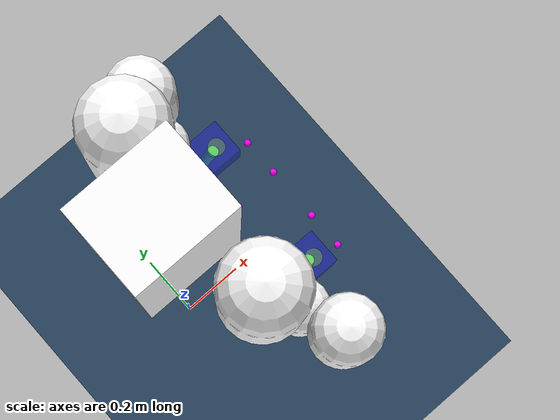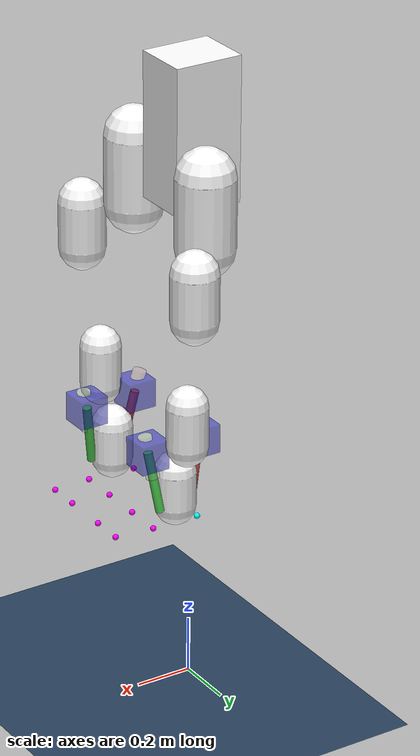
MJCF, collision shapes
<!-- This file consist the xml model of the exoskeleton of M10.
 The structure is the following:
  -->

<mujoco model="exoskeleton">
    <compiler meshdir="assets" angle="degree" autolimits="true"/>
    <size nuser_actuator="1" nuser_sensor="8" nuser_geom="1"/>
    <option timestep="0.02" iterations="5" ls_iterations="10" gravity="0 0 -9.81">
        <flag multiccd="enable"/>
    </option>

    <visual>
        <headlight diffuse="0.8 0.8 0.8" ambient="0.4 0.4 0.4" specular="0 0 0"/>
        <map force="0.1" zfar="10"/>
        <rgba haze="0.15 0.25 0.35 1"/>
        <global offwidth="800" offheight="800"/>
        <quality shadowsize="0"/>
    </visual>

    <asset>
        <texture type="skybox" builtin="gradient" rgb1="0.3 0.5 0.7" rgb2="0 0 0" width="512" height="3072"/>
        <texture type="2d" name="groundplane" builtin="checker" rgb1="0.2 0.3 0.4" rgb2="0.1 0.2 0.3" width="300" height="300"/>
        <material name="groundplane" texture="groundplane" texuniform="true" texrepeat="5 5"/>

        <material name="march_grey" rgba=".87 .89 .91 1"/>
        <material name="collision" rgba="1 0 0 0.5"/>

        <mesh name="backpack"    scale="-1 1 1"   file="Backplate.obj"/>
        <mesh name="L_Ankle"     scale="-1 -1 1"   file="L_Ankle.obj"/>
        <mesh name="L_Hip"       scale="-1 -1 1"   file="L_Hip.obj"/>
        <mesh name="L_UpperLeg"  scale="-1 -1 1"   file="L_UpperLeg.obj"/>
        <mesh name="L_LowerLeg"  scale="-1 -1 1"   file="L_LowerLeg.obj"/>
        <mesh name="L_Sole"      scale="-1 -1 1"   file="L_Foot.obj"/>

        <mesh name="R_Ankle"     scale="-1 1 1"    file="L_Ankle.obj"/>
        <mesh name="R_Hip"       scale="-1 1 1"    file="L_Hip.obj"/>
        <mesh name="R_UpperLeg"  scale="-1 1 1"    file="L_UpperLeg.obj"/>
        <mesh name="R_LowerLeg"  scale="-1 1 1"    file="L_LowerLeg.obj"/>
        <mesh name="R_Sole"      scale="-1 1 1"    file="L_Foot.obj"/>
    </asset>

    <default>
        <site group="4"/>
        <motor ctrlrange="-1 1" ctrllimited="true" />
        <geom contype="0" conaffinity="0" condim="1" solref="0.005 1" />

        <!-- COLLISION CLASSES -->
        <default class="backpack_collision">
            <geom type="box" group="3" contype="2" conaffinity="1" condim="3" rgba="1 1 1 0.5" material="march_grey"/>
        </default>

        <default class="L_collision">
            <geom type="capsule" group="3" contype="2" conaffinity="1" condim="3" rgba="1 1 1 0.5" material="march_grey"/>
        </default>

        <default class="R_collision">
            <geom type="capsule" group="3" contype="2" conaffinity="1" condim="3" rgba="1 1 1 0.5" material="march_grey"/>
        </default>

        <default class ="foot_collision">
            <geom type="sphere" size="0.01" group="3" contype="4" conaffinity="1" condim="4" friction="1 0.005" rgba="1 0 1 0.5"/>
        </default>

        <!-- JOINT CLASSES  #TODO: determine appropriate damping, armature, frictionloss and stiffness values -->
        <default class="hip_aa">
            <joint damping="8.46" armature="8.47" frictionloss="10" stiffness="0"/>
            <motor ctrlrange="-1 1" ctrllimited="true" gear="100"/>
        </default>

        <default class="hip_fe">
            <joint damping="5.09" armature="6.74" frictionloss="10"/>
            <motor ctrlrange="-2.4 2.4" ctrllimited="true" gear="100"/>
        </default>

        <default class="knee">
            <joint damping="4.45" armature="6.17" frictionloss="10"/>
            <motor ctrlrange="-2.4 2.4" ctrllimited="true" gear="100"/>
        </default>

        <default class="ankle_linear">
            <joint damping="7.93" armature="7.93" frictionloss="3" stiffness="0"/>
            <motor ctrlrange="-3 3" ctrllimited="true" gear="100"/>
        </default>

    </default>

    <worldbody>
        <geom name='floor' size='0 0 .05' type='plane' material='groundplane' pos='0 0 0'
            contype="1" conaffinity='6' condim='4'
            solref='0.000002 1'
            solimp='0.99 0.999 0.000001'
            friction='3 0.005 0.0001'/> <!-- #TODO adjust friction values -->
        <light name='spotlight' mode='targetbodycom' target='backpack' diffuse='.8 .8 .8' specular='0.3 0.3 0.3' pos='0 -20 4' cutoff='10'/>

        <!-- START OF THE BODY "TREE" OF THE EXO -->
        <body name="backpack" pos="0.0 0.0 2.0"> <!-- made the backpack higher for testing, z was 1.28-->
            <light name="top" pos="0.00000 0.00000 2.00000" mode="trackcom" />
            <camera name="diag" pos="3.00000 -2.50000 1.00000" xyaxes="1 1 0 0 1 2" mode="track" />
            <inertial mass="3.2184" pos="-0.00400 0 -0.01700" fullinertia="0.13140 0.04400 0.08870 -0.00000 -0.00100 0.00000" />
            <geom name="backpack" type="mesh" mesh="backpack" />
            <geom name="backpack_box" size="0.12 0.10 0.25" class="backpack_collision"/>
            <site name="imu_backpack" size="0.01" pos="0.0 0.0 0.0" />

            <!-- LEFT HIP -->
            <body name="L_hip" pos="0.00400 0.09200 -0.20000">
                <inertial mass="2.0526" pos="0.12400 0.17000 0.00700" fullinertia="0.11230 0.08360 0.18680 -0.08410 -0.00300 -0.00320" />
                <joint name="left_hip_aa" axis="-1 0 0" range="-20 10" limited="true" class="hip_aa" />
                <geom name="L_Hip" type="mesh" mesh="L_Hip" />
                <geom name="L_Hip_capsule" size="0.10 0.12 0.08" pos="0.08 0.12 0" class="L_collision"/>
                <site name="tor_L_HAA" size="0.01" pos="0.00000 0.00000 0.00000" />

                 <!-- LEFT UPPER LEG -->
                <body name="L_UL" pos="0.17600 0.24900 0.00100">
                    <inertial mass="5.7057" pos="0.02600 -0.07500 -0.23600" fullinertia="0.49120 0.46540 0.04310 0.00890 0.02870 -0.11260" />
                    <joint name="left_hip_fe" axis="0 -1 0" range="-5 110" limited="true" class="hip_fe" />
                    <geom name="L_UpperLeg" type="mesh" mesh="L_UpperLeg" />
                    <geom name="L_UpperLeg_capsule" size="0.08 0.08 0.24" pos="0 -0.04 -0.235" class="L_collision"/>
                    <site name="tor_L_HFE" size="0.01" pos="0.00000 0.00000 0.00000" />
                    <site name="L_UL_imu" size="0.01" pos="-0.0424275 0.0294287 -0.2288773" />

                    <!-- LEFT LOWER LEG -->
                    <body name="L_LL" pos="0.00200 -0.0600 -0.47200">
                        <inertial mass="5.8116" pos="0.00300 -0.04600 -0.14500" fullinertia="0.21540 0.22000 0.03000 0.00140 -0.00290 -0.03550" />
                        <joint name="left_knee" axis="0 1 0" range="0 125" limited="true" class="knee" />
                        <geom name="L_LowerLeg" type="mesh" mesh="L_LowerLeg" />
                        <geom name="L_LowerLeg_capsule" size="0.07 0.07 0.23" pos="0 -0.015 -0.23" class="L_collision"/>
                        <site name="tor_L_KFE" size="0.01" pos="0.00000 0.00000 0.00000" />
                        <site name="L_LL_imu" size="0.01" pos="-0.0116665 -0.0191920 -0.1801739" />

                        <!-- COUPLED LINEARS -->
                        <body name="L_Front_Housing" pos="0.113 -0.092 -0.268">
                            <inertial mass="0.5" pos="0 0 -0.07" diaginertia="0.002 0.002 0.0005"/> <!-- TODO: determine these values-->
                            <joint name="L_Front_Hinge" type="hinge" axis="0 1 0" damping="0.01"/>

                            <geom type="cylinder" size="0.023" rgba="0.7 0.9 0.7 0.2" fromto="0 0 0 -0.022 0.0149 -0.149" />

                            <body name="L_Front_Spindle" pos="-0.0084 0.0059 -0.0596">
                                <inertial mass="0.05" pos="0 0 0" diaginertia="0.0001 0.0001 0.0001"/><!-- TODO: determine these values-->
                                <geom type="box" size="0.05 0.05 0.05" rgba="0.1 0.1 0.8 0.5"/>
                                <joint name="L_Front_Motor" type="hinge" axis="0 0 1" limited="true" range="-7614 9666" class="ankle_linear" />
                            </body>

                            <body name="L_Front_Pushrod" pos="-0.0084 0.0059 -0.0596">
                                <inertial mass="0.3" pos="-0.025 0 -0.11" diaginertia="0.002 0.002 0.0001"/> <!-- TODO: determine these values-->
                                <joint name="L_Front_Slide" type="slide" axis="0 0 1" limited="true" range="-0.0423 0.0537" class="ankle_linear"/>

                                <geom type="cylinder" size="0.015" rgba="0.3 0.8 0.3 1" fromto="0 0 0 -0.0316 0.0241 -0.2114"/>

                                <site name="L_Front_Rod_Tip" pos="-0.0316 0.0241 -0.2114"/>

                            </body>
                        </body>

                        <body name="L_Back_Housing" pos="-0.105 -0.092 -0.245">
                            <inertial mass="0.5" pos="0.0075 0 -0.07" diaginertia="0.002 0.002 0.0005"/> <!-- TODO: determine these values-->
                            <joint name="L_Back_Hinge" type="hinge" axis="0 1 0" damping="0.01"/>

                            <geom type="cylinder" size="0.023" rgba="0.9 0.7 0.7 0.2" fromto="0 0 0 0.04 0.0135 -0.147"/>

                            <body name="L_Back_Spindle" pos="0.0151 0.0070 -0.0764">
                                <inertial mass="0.05" pos="0 0 0" diaginertia="0.0001 0.0001 0.0001"/><!-- TODO: determine these values-->
                                <geom type="box" size="0.05 0.05 0.05" rgba="0.1 0.1 0.8 0.5"/>
                                <joint name="L_Back_Motor" type="hinge" axis="0 0 1" limited="true" range="-10818 6462" class="ankle_linear" />
                            </body>

                            <body name="L_Back_Pushrod" pos="0.0151 0.0070 -0.0764">
                                <inertial mass="0.3" pos="0.015 0 -0.125" diaginertia="0.002 0.002 0.0001"/> <!-- TODO: determine these values-->
                                <joint name="L_Back_Slide" type="slide" axis="0 0 1" limited="true" range="-0.0601 0.0359" class="ankle_linear"/>

                                <geom type="cylinder" size="0.015" rgba="0.8 0.3 0.3 1" fromto="0 0 0 0.0429 0.02 -0.2176"/>

                                <site name="L_Back_Rod_Tip" pos="0.0429 0.02 -0.2176"/>

                            </body>
                        </body>

                        <!-- LEFT ANKLE -->
                        <body name="L_ankle" pos="0.0000 -0.02500 -0.46800">
                            <inertial mass="4.7638" pos=" 0.00400 -0.06000 -0.01800" fullinertia="0.00240 0.00260 0.00460 0.00010 -0.00000 -0.00060" />
                            <joint name="left_ankle_dpf" axis="0 -1 0" range="-35 15" limited="true"/>
                            <geom name="L_Ankle" type="mesh" mesh="L_Ankle" />
                            <geom name="L_Ankle_capsule" size="0.07 0.06 0.04" pos="0 -0.06 -0.015" class="L_collision"/>
                            <site name="tor_L_ADPF" size="0.01" pos="0.00000 0.00000 0.00000" />
                            <site name="tor_L_AIE" size="0.01" pos="-0.13100 -0.11400 -0.02600" />
                            <site name="tor_L_ankle" size="0.01" pos="0.00000 0.00000 0.00000" />

                            <!-- LEFT FOOT -->
                            <body name="L_foot" pos="-0.13500 -0.1200 -0.02600">
                                <inertial mass="1.2259" pos=" 0.16300 0.02400 -0.06000" fullinertia="0.04700 0.19090 0.17630 -0.01390 0.04760 -0.00130" />
                                <joint name="left_ankle_ie" pos="-0.0 -0.0 -0.0" axis="1 0 0" range="-10 15" limited="true"/>
                                <geom name="L_Foot" type="mesh" mesh="L_Sole" />

                                <site name="L_Front_Foot_Anchor" pos="0.208 0.08 -0.045" size="0.01" rgba="0 1 0 1"/>
                                <site name="L_Back_Foot_Anchor"  pos="0.088 0.08 -0.045" size="0.01" rgba="1 0 0 1"/>

                                <!-- Multi-point contact system for left foot -->
                                <!-- Back-left corner -->
                                <geom name="L_foot_contact_bl" rgba="0 0 1 0.5" pos="0.05000 -0.0600 -0.11900" class="foot_collision"/>

                                <!-- Back-right corner -->
                                <geom name="L_foot_contact_br" rgba="0 1 1 0.5" pos="0.05000 0.0600 -0.11900" class="foot_collision"/>

                                <!-- Front-left corner -->
                                <geom name="L_foot_contact_fl" pos="0.3600 -0.05500 -0.11000" class="foot_collision"/>

                                <!-- Front-right corner -->
                                <geom name="L_foot_contact_fr" pos="0.3600 0.05500 -0.11000" class="foot_collision"/>

                                <!-- Mid-back-left -->
                                <geom name="L_foot_contact_mbl" pos="0.22250 -0.06500 -0.11350" class="foot_collision"/>

                                <!-- Mid-back-right -->
                                <geom name="L_foot_contact_mbr" pos="0.22250 0.06500 -0.11350" class="foot_collision"/>

                                <!-- Touch sensor sites -->
                                <site name="sp0" pos="0.05000 -0.0600 -0.11900" type="sphere" size=".01" group="6" />
                                <site name="sp1" pos="0.05000 0.0600 -0.11900" type="sphere" size=".01" group="6" />
                                <site name="sp2" pos="0.3600 -0.05500 -0.11000" type="sphere" size=".01" group="6" />
                                <site name="sp3" pos="0.3600 0.05500 -0.11000" type="sphere" size=".01" group="6" />

                                <site name="tor_L_foot" pos="0.00000 0.00000 0.00000" size="0.01" rgba="1 0 0 0.5" />

                            </body>
                        </body>
                    </body>
                </body>
            </body>

            <!-- RIGHT HIP -->
            <body name="R_hip" pos="0.00400 -0.09200 -0.20000">
                <inertial mass="2.0526" pos="0.12400 -0.17000 0.00700" fullinertia="0.11230 0.08360 0.18680 0.08410 -0.00300 0.00320" />
                <joint name="right_hip_aa" axis="1 0 0" range="-20 10" limited="true" class="hip_aa" />
                <geom name="R_Hip" type="mesh" mesh="R_Hip" />
                <geom name="R_Hip_capsule" size="0.10 0.12 0.08" pos="0.08 -0.12 0" class="R_collision"/>
                <site name="tor_R_HAA" size="0.01" pos="0.00000 0.00000 0.00000" />

                 <!-- RIGHT UPPER LEG -->
                <body name="R_UL" pos="0.17600 -0.24900 0.00100">
                    <inertial mass="5.7057" pos=" 0.01000 0.06600 -0.22600" fullinertia="0.46570 0.44360 0.03460 -0.00320 0.01130 0.09930" />
                    <joint name="right_hip_fe" axis="0 -1 0" range="-5 110" limited="true" class="hip_fe" />
                    <geom name="R_UpperLeg" type="mesh" mesh="R_UpperLeg" />
                    <geom name="R_UpperLeg_capsule" size="0.08 0.08 0.24" pos="0 -0.04 -0.235" class="R_collision"/>
                    <site name="tor_R_HFE" size="0.01" pos="0.00000 0.00000 0.00000" />
                    <site name="R_UL_imu" size="0.01" pos="0.035127 -0.0329461 -0.2269061" />

                    <!-- RIGHT LOWER LEG -->
                    <body name="R_LL" pos="0.00200 0.0600 -0.47200">
                    <inertial mass="5.8116" pos=" 0.00800 0.03900 -0.14100" fullinertia="0.21540 0.22000 0.03000 -0.00140 -0.00290 0.03550" />
                    <joint name="right_knee" axis="0 1 0" range="0 125" limited="true" class="knee" />
                    <geom name="R_LowerLeg" type="mesh" mesh="R_LowerLeg" />
                    <geom name="R_LowerLeg_capsule" size="0.07 0.07 0.23" pos="0 0.015 -0.23" class="R_collision"/>
                    <site name="tor_R_KFE" size="0.01" pos="0.00000 0.00000 0.00000" />
                    <site name="R_LL_imu" size="0.01" pos="0.0083911 -0.0238741 -0.1807056" />

                        <!-- COUPLED LINEARS -->
                        <body name="R_Front_Housing" pos="0.113 0.092 -0.268">
                            <inertial mass="0.5" pos="0 0 -0.07" diaginertia="0.002 0.002 0.0005"/> <!-- TODO: determine these values-->
                            <joint name="R_Front_Hinge" type="hinge" axis="0 1 0" damping="0.01"/>

                            <geom type="cylinder" size="0.023" rgba="0.7 0.9 0.7 0.2" fromto="0 0 0 -0.022 -0.0149 -0.149" />

                            <body name="R_Front_Spindle" pos="-0.0084 0.0059 -0.0596">
                                <inertial mass="0.05" pos="0 0 0" diaginertia="0.0001 0.0001 0.0001"/><!-- TODO: determine these values-->
                                <geom type="box" size="0.05 0.05 0.05" rgba="0.1 0.1 0.8 0.5"/>
                                <joint name="R_Front_Motor" type="hinge" axis="0 0 1" limited="true" range="-7614 9666" class="ankle_linear" />
                            </body>

                            <body name="R_Front_Pushrod" pos="-0.0084 0.0059 -0.0596">
                                <inertial mass="0.3" pos="-0.025 0 -0.11" diaginertia="0.002 0.002 0.0001"/> <!-- TODO: determine these values-->
                                <joint name="R_Front_Slide" type="slide" axis="0 0 1" limited="true" range="-0.0423 0.537" class="ankle_linear"/>

                                <geom type="cylinder" size="0.015" rgba="0.3 0.8 0.3 1" fromto="0 0 0 -0.0316 -0.0241 -0.2114"/>

                                <site name="R_Front_Rod_Tip" pos="-0.0316 -0.0241 -0.2114"/>

                            </body>
                        </body>

                        <body name="R_Back_Housing" pos="-0.105 0.092 -0.245">
                            <inertial mass="0.5" pos="0.0075 0 -0.07" diaginertia="0.002 0.002 0.0005"/> <!-- TODO: determine these values-->
                            <joint name="R_Back_Hinge" type="hinge" axis="0 1 0" damping="0.01"/>

                            <geom type="cylinder" size="0.023" rgba="0.9 0.7 0.7 0.2" fromto="0 0 0 0.04 -0.0135 -0.147"/>

                            <body name="R_Back_Spindle" pos="0.0151 -0.0070 -0.0764">
                                <inertial mass="0.05" pos="0 0 0" diaginertia="0.0001 0.0001 0.0001"/><!-- TODO: determine these values-->
                                <geom type="box" size="0.05 0.05 0.05" rgba="0.1 0.1 0.8 0.5"/>
                                <joint name="R_Back_Motor" type="hinge" axis="0 0 1" limited="true" range="-10818 6462" class="ankle_linear" />
                            </body>

                            <body name="R_Back_Pushrod" pos="0.0151 -0.0070 -0.0764">
                                <inertial mass="0.3" pos="0.015 0 -0.125" diaginertia="0.002 0.002 0.0001"/> <!-- TODO: determine these values-->
                                <joint name="R_Back_Slide" type="slide" axis="0 0 1" limited="true" range="-0.0601 0.0359" class="ankle_linear"/>

                                <geom type="cylinder" size="0.015" rgba="0.8 0.3 0.3 1" fromto="0 0 0 0.0429 -0.02 -0.2176"/>

                                <site name="R_Back_Rod_Tip" pos="0.0429 -0.02 -0.2176"/>

                            </body>
                        </body>

                        <!-- RIGHT ANKLE -->
                        <body name="R_ankle" pos="0.0000 0.02500 -0.46800">
                            <inertial mass="4.7638" pos=" 0.00400 0.06000 -0.01800" fullinertia="0.00240 0.00270 0.00460 0.00010 0.00000 0.00060" />
                            <joint name="right_ankle_dpf" axis="0 -1 0" range="-28 17" limited="true" />
                            <geom name="R_Ankle" type="mesh" mesh="R_Ankle" />
                            <geom name="R_Ankle_capsule" size="0.07 0.06 0.04" pos="0 0.06 -0.015" class="R_collision"/>
                            <site name="tor_R_ADPF" size="0.01" pos="0.00000 0.00000 0.00000" />
                            <site name="tor_R_AIE" size="0.01" pos="-0.13100 -0.11400 -0.02600" />
                            <site name="tor_R_ankle" size="0.01" pos="0.00000 0.00000 0.00000" />

                            <!-- RIGHT FOOT -->
                            <body name="R_foot" pos="-0.13500 0.1200 -0.02600">
                                <inertial mass="1.2259" pos=" 0.16700 -0.02600 -0.06100" fullinertia="0.04700 0.19280 0.17840 0.01520 0.04800 0.00080" />
                                <joint name="right_ankle_ie" pos="-0.0 0.0 -0.0" axis="-1 0 0" range="-10 10"  limited="true"/>
                                <geom name="R_Foot" type="mesh" mesh="R_Sole" />

                                <site name="R_Front_Foot_Anchor" pos="0.208 -0.08 -0.045" size="0.01" rgba="0 1 0 1"/>
                                <site name="R_Back_Foot_Anchor"  pos="0.088 -0.08 -0.045" size="0.01" rgba="1 0 0 1"/>

                                <!-- Multi-point contact system for right foot -->
                                <!-- Back-left corner -->
                                <geom name="R_foot_contact_bl" pos="0.05000 -0.0600 -0.11900" class="foot_collision"/>

                                <!-- Back-right corner -->
                                <geom name="R_foot_contact_br" pos="0.05000 0.0600 -0.11900" class="foot_collision"/>

                                <!-- Front-left corner -->
                                <geom name="R_foot_contact_fl" pos="0.3600 -0.05500 -0.11000" class="foot_collision"/>

                                <!-- Front-right corner -->
                                <geom name="R_foot_contact_fr" pos="0.3600 0.05500 -0.11000" class="foot_collision"/>

                                <!-- Mid-back-left -->
                                <geom name="R_foot_contact_mbl" pos="0.22250 -0.06500 -0.11350" class="foot_collision"/>

                                <!-- Mid-back-right -->
                                <geom name="R_foot_contact_mbr" pos="0.22250 0.06500 -0.11350" class="foot_collision"/>

                                <!-- Touch sensor sites -->
                                <site name="sp4" pos="0.05000 -0.0600 -0.11900" type="sphere" size=".01" group="6" />
                                <site name="sp5" pos="0.05000 0.0600 -0.11900" type="sphere" size=".01" group="6" />
                                <site name="sp6" pos="0.3600 -0.05500 -0.11000" type="sphere" size=".01" group="6" />
                                <site name="sp7" pos="0.3600 0.05500 -0.11000" type="sphere" size=".01" group="6" />

                                <site name="tor_R_foot" pos="0.00000 0.00000 0.00000" size="0.01" rgba="1 0 0 0.5" />

                            </body>
                        </body>
                    </body>
                </body>
            </body>
        </body>

    </worldbody>

    <actuator>
        <motor name="left_hip_aa"       joint="left_hip_aa"   class="hip_aa"/>
        <motor name="left_hip_fe"       joint="left_hip_fe"   class="hip_fe" />
        <motor name="left_knee"         joint="left_knee"     class="knee" />

        <motor name="right_hip_aa"      joint="right_hip_aa"  class="hip_aa" />
        <motor name="right_hip_fe"      joint="right_hip_fe"  class="hip_fe" />
        <motor name="right_knee"        joint="right_knee"    class="knee" />

        <motor name="L_Front_Linear"    joint="L_Front_Motor" class="ankle_linear"/>
        <motor name="L_Back_Linear"     joint="L_Back_Motor"  class="ankle_linear"/>
        <motor name="R_Front_Linear"    joint="R_Front_Motor" class="ankle_linear"/>
        <motor name="R_Back_Linear"     joint="R_Back_Motor"  class="ankle_linear"/>
    </actuator>

    <equality>
        <joint name="L_Front_rot_to_slide" joint1="L_Front_Slide" joint2="L_Front_Motor"
            polycoef="0 0.00031831" solref="0.01 2" solimp="0.9 0.95 0.001"/>

        <joint name="L_Back_rot_to_slide" joint1="L_Back_Slide" joint2="L_Back_Motor"
            polycoef="0 0.00031831" solref="0.01 2" solimp="0.9 0.95 0.001"/>

        <joint name="R_Front_rot_to_slide" joint1="R_Front_Slide" joint2="R_Front_Motor"
            polycoef="0 0.00031831" solref="0.01 2" solimp="0.9 0.95 0.001"/>

        <joint name="R_Back_rot_to_slide" joint1="R_Back_Slide" joint2="R_Back_Motor"
            polycoef="0 0.00031831" solref="0.01 2" solimp="0.9 0.95 0.001"/>

        <connect name="L_Link_Front" site1="L_Front_Foot_Anchor" site2="L_Front_Rod_Tip" solref="0.0001 1"/>
        <connect name="L_Link_Back"  site1="L_Back_Foot_Anchor"  site2="L_Back_Rod_Tip" solref="0.0001 1"/>

        <connect name="R_Link_Front" site1="R_Front_Foot_Anchor" site2="R_Front_Rod_Tip" solref="0.0001 1"/>
        <connect name="R_Link_Back"  site1="R_Back_Foot_Anchor"  site2="R_Back_Rod_Tip" solref="0.0001 1"/>
    </equality>

    <sensor>
        <jointpos name="L_AIE_pos_output"  joint="left_ankle_ie"   user="18" noise="000" />
        <jointpos name="L_ADPF_pos_output" joint="left_ankle_dpf"  user="18" noise="000" />
        <jointpos name="L_HAA_pos_output"  joint="left_hip_aa"     user="18" noise="000" />
        <jointpos name="L_HFE_pos_output"  joint="left_hip_fe"     user="18" noise="000" />
        <jointpos name="L_KFE_pos_output"  joint="left_knee"       user="18" noise="000" />
        <jointpos name="R_AIE_pos_output"  joint="right_ankle_ie"  user="18" noise="000" />
        <jointpos name="R_ADPF_pos_output" joint="right_ankle_dpf" user="18" noise="000" />
        <jointpos name="R_HAA_pos_output"  joint="right_hip_aa"   user="18" noise="000" />
        <jointpos name="R_HFE_pos_output"  joint="right_hip_fe"   user="18" noise="000" />
        <jointpos name="R_KFE_pos_output"  joint="right_knee"     user="18" noise="000" />

        <jointvel name="L_AIE_vel_output"  joint="left_ankle_ie"   user="18" noise="000" />
        <jointvel name="L_ADPF_vel_output" joint="left_ankle_dpf"  user="18" noise="000" />
        <jointvel name="L_HAA_vel_output"  joint="left_hip_aa"     user="18" noise="000" />
        <jointvel name="L_HFE_vel_output"  joint="left_hip_fe"     user="18" noise="000" />
        <jointvel name="L_KFE_vel_output"  joint="left_knee"       user="18" noise="000" />
        <jointvel name="R_AIE_vel_output"  joint="right_ankle_ie"  user="18" noise="000" />
        <jointvel name="R_ADPF_vel_output" joint="right_ankle_dpf" user="18" noise="000" />
        <jointvel name="R_HAA_vel_output"  joint="right_hip_aa"    user="18" noise="000" />
        <jointvel name="R_HFE_vel_output"  joint="right_hip_fe"    user="18" noise="000" />
        <jointvel name="R_KFE_vel_output"  joint="right_knee"      user="18" noise="000" />

        <torque name="L_AIE_tor_output"  site="tor_L_AIE"  user="13" noise="000" />
        <torque name="L_ADPF_tor_output" site="tor_L_ADPF" user="13" noise="000" />
        <torque name="L_HAA_tor_output"  site="tor_L_HAA"  user="13" noise="000" />
        <torque name="L_HFE_tor_output"  site="tor_L_HFE"  user="13" noise="000" />
        <torque name="L_KFE_tor_output"  site="tor_L_KFE"  user="13" noise="000" />
        <torque name="R_AIE_tor_output"  site="tor_R_AIE"  user="13" noise="000" />
        <torque name="R_ADPF_tor_output" site="tor_R_ADPF" user="13" noise="000" />
        <torque name="R_HAA_tor_output"  site="tor_R_HAA"  user="13" noise="000" />
        <torque name="R_HFE_tor_output"  site="tor_R_HFE"  user="13" noise="000" />
        <torque name="R_KFE_tor_output"  site="tor_R_KFE"  user="13" noise="000" />

        <!-- User sensors not supported by MJX -->
        <!-- Pressure soles -->
        <touch name="left_back_R_pressure"   site="sp0"/>
        <touch name="left_back_L_pressure"   site="sp1"/>
        <touch name="left_front_R_pressure"  site="sp2"/>
        <touch name="left_front_L_pressure"  site="sp3"/>
        <touch name="right_back_L_pressure"  site="sp4"/>
        <touch name="right_back_R_pressure"  site="sp5"/>
        <touch name="right_front_L_pressure" site="sp6"/>
        <touch name="right_front_R_pressure" site="sp7"/>

         <!-- IMU sensors -->
        <framepos name="trace0" objtype="body" objname="backpack"/>
        <frameangvel name="torso_angvel" objtype="body" objname="backpack"/>
        <framepos name="torso_position" objtype="body" objname="backpack"/>
        <subtreelinvel name="torso_subtreelinvel" body="backpack"/>
        <framepos name="backpack_imu_position" objtype="body" objname="backpack"/>
        <subtreecom name="torso_subtreecom" body="backpack"/>

        <!-- Noise & cutoff must be determined -->
        <framequat name='backpack_orientation' objtype='site' objname='imu_backpack'/>
        <gyro name='vel_imu_backpack' site='imu_backpack' noise='5e-4' cutoff='34.9'/>
        <accelerometer name='acc_imu_backpack' site='imu_backpack' noise='1e-5' cutoff='157'/>

        <framequat name='L_UL_orientation' objtype='site' objname='L_UL_imu'/>
        <gyro name='vel_L_UL_imu' site='L_UL_imu' noise='5e-4' cutoff='34.9'/>
        <accelerometer name='acc_L_UL_imu' site='L_UL_imu' noise='1e-5' cutoff='157'/>

        <framequat name='L_LL_orientation' objtype='site' objname='L_LL_imu'/>
        <gyro name='vel_L_LL_imu' site='L_LL_imu' noise='5e-4' cutoff='34.9'/>
        <accelerometer name='acc_L_LL_imu' site='L_LL_imu' noise='1e-5' cutoff='157'/>

        <framequat name="R_UL_orientation" objtype="site" objname="R_UL_imu"/>
        <gyro name="vel_R_UL_imu" site="R_UL_imu" noise="5e-4" cutoff="34.9"/>
        <accelerometer name="acc_R_UL_imu" site="R_UL_imu" noise="1e-5" cutoff="157"/>

        <framequat name="R_LL_orientation" objtype="site" objname="R_LL_imu"/>
        <gyro name="vel_R_LL_imu" site="R_LL_imu" noise="5e-4" cutoff="34.9"/>
        <accelerometer name="acc_R_LL_imu" site="R_LL_imu" noise="1e-5" cutoff="157"/>
    </sensor>

</mujoco>
